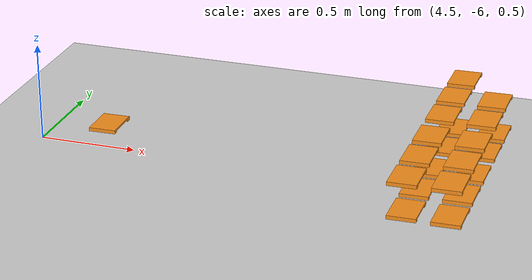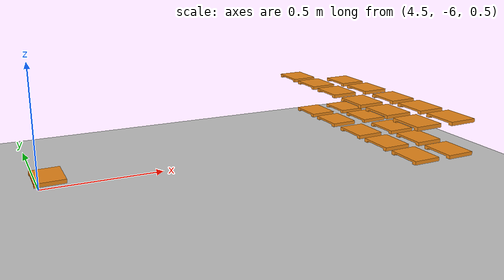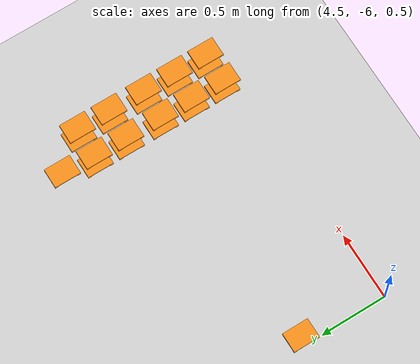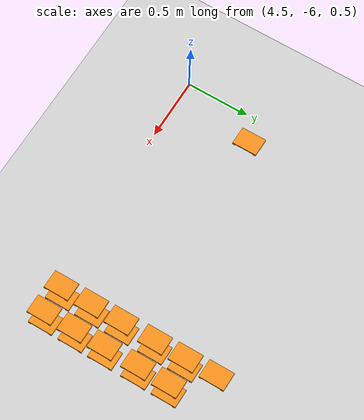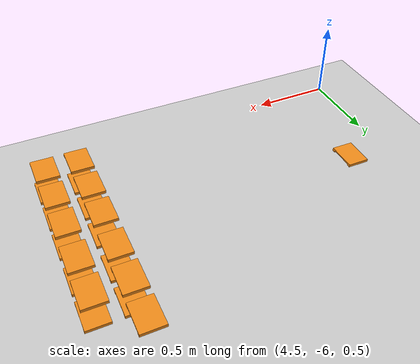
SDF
<sdf version="1.7">
 <world name="default">
  <model name="ground_plane">
   <static>1</static>
   <link name="link">
    <collision name="collision">
     <geometry><plane><normal>0 0 1</normal><size>100 100</size></plane></geometry>
     <surface>
      <contact><collide_bitmask>65535</collide_bitmask></contact>
      <friction><ode><mu>1</mu><mu2>1</mu2></ode></friction>
     </surface>
    </collision>
    <visual name="visual">
     <cast_shadows>0</cast_shadows>
     <geometry><plane><normal>0 0 1</normal><size>100 100</size></plane></geometry>
     <material>
      <script><uri>file://media/materials/scripts/gazebo.material</uri><name>Gazebo/Grey</name></script>
     </material>
    </visual>
   </link>
  </model>
  <model name="pallet_311">
   <pose>4.6059 -5.4125 0.331043 3.2e-05 -0.012376 1e-05</pose>
   <link name="link">
    <inertial>
     <pose>0 0 0 0 -0 1.571</pose>
     <inertia>
      <ixx>0.00220983</ixx>
      <ixy>0</ixy>
      <ixz>0</ixz>
      <iyy>0.00128087</iyy>
      <iyz>0</iyz>
      <izz>0.00244903</izz>
     </inertia>
     <mass>0.01</mass>
    </inertial>
    <visual name="visual1">
     <cast_shadows>0</cast_shadows>
     <geometry><mesh><uri>model://pallet/meshes/pallet.stl</uri></mesh></geometry>
     <material>
      <script><uri>file://media/materials/scripts/gazebo.material</uri><name>Gazebo/Orange</name></script>
      <shader type="pixel"><normal_map>__default__</normal_map></shader>
      <emissive>0 0 0 1</emissive>
     </material>
     <pose>0 0 -0 0 -0 1.571</pose>
    </visual>
    <collision name="collision_0">
     <pose>0 0 0 0 -0 1.571</pose>
     <geometry><mesh><uri>model://pallet/meshes/pallet.stl</uri></mesh></geometry>
     <surface>
      <friction>
       <ode><mu>1</mu><mu2>1</mu2><fdir1>0 0 0</fdir1><slip1>0</slip1><slip2>0</slip2></ode>
       <torsional>
        <coefficient>1</coefficient>
        <patch_radius>0</patch_radius>
        <surface_radius>0</surface_radius>
        <use_patch_radius>1</use_patch_radius>
        <ode><slip>0</slip></ode>
       </torsional>
      </friction>
      <bounce><restitution_coefficient>0</restitution_coefficient><threshold>1e+06</threshold></bounce>
      <contact>
       <collide_without_contact>0</collide_without_contact>
       <collide_without_contact_bitmask>1</collide_without_contact_bitmask>
       <collide_bitmask>1</collide_bitmask>
       <ode>
        <soft_cfm>0</soft_cfm>
        <soft_erp>0.2</soft_erp>
        <kp>1e+13</kp>
        <kd>1</kd>
        <max_vel>0.01</max_vel>
        <min_depth>0</min_depth>
       </ode>
       <bullet>
        <split_impulse>1</split_impulse>
        <split_impulse_penetration_threshold>-0.01</split_impulse_penetration_threshold>
        <soft_cfm>0</soft_cfm>
        <soft_erp>0.2</soft_erp>
        <kp>1e+13</kp>
        <kd>1</kd>
       </bullet>
      </contact>
     </surface>
    </collision>
   </link>
   <static>0</static>
  </model>
  <model name="pallet_319">
   <pose>6.60559 -4.887 0.330972 2.6e-05 -0.013267 -7e-06</pose>
   <link name="link">
    <inertial>
     <pose>0 0 0 0 -0 1.571</pose>
     <inertia>
      <ixx>0.00220983</ixx>
      <ixy>0</ixy>
      <ixz>0</ixz>
      <iyy>0.00128087</iyy>
      <iyz>0</iyz>
      <izz>0.00244903</izz>
     </inertia>
     <mass>0.01</mass>
    </inertial>
    <visual name="visual1">
     <cast_shadows>0</cast_shadows>
     <geometry><mesh><uri>model://pallet/meshes/pallet.stl</uri></mesh></geometry>
     <material>
      <script><uri>file://media/materials/scripts/gazebo.material</uri><name>Gazebo/Orange</name></script>
      <shader type="pixel"><normal_map>__default__</normal_map></shader>
      <emissive>0 0 0 1</emissive>
     </material>
     <pose>0 0 -0 0 -0 1.571</pose>
    </visual>
    <collision name="collision_0">
     <pose>0 0 0 0 -0 1.571</pose>
     <geometry><mesh><uri>model://pallet/meshes/pallet.stl</uri></mesh></geometry>
     <surface>
      <friction>
       <ode><mu>1</mu><mu2>1</mu2><fdir1>0 0 0</fdir1><slip1>0</slip1><slip2>0</slip2></ode>
       <torsional>
        <coefficient>1</coefficient>
        <patch_radius>0</patch_radius>
        <surface_radius>0</surface_radius>
        <use_patch_radius>1</use_patch_radius>
        <ode><slip>0</slip></ode>
       </torsional>
      </friction>
      <bounce><restitution_coefficient>0</restitution_coefficient><threshold>1e+06</threshold></bounce>
      <contact>
       <collide_without_contact>0</collide_without_contact>
       <collide_without_contact_bitmask>1</collide_without_contact_bitmask>
       <collide_bitmask>1</collide_bitmask>
       <ode>
        <soft_cfm>0</soft_cfm>
        <soft_erp>0.2</soft_erp>
        <kp>1e+13</kp>
        <kd>1</kd>
        <max_vel>0.01</max_vel>
        <min_depth>0</min_depth>
       </ode>
       <bullet>
        <split_impulse>1</split_impulse>
        <split_impulse_penetration_threshold>-0.01</split_impulse_penetration_threshold>
        <soft_cfm>0</soft_cfm>
        <soft_erp>0.2</soft_erp>
        <kp>1e+13</kp>
        <kd>1</kd>
       </bullet>
      </contact>
     </surface>
    </collision>
   </link>
   <static>0</static>
  </model>
  <model name="pallet_321">
   <pose>6.60559 -5.137 0.330972 1.8e-05 -0.013267 4e-06</pose>
   <link name="link">
    <inertial>
     <pose>0 0 0 0 -0 1.571</pose>
     <inertia>
      <ixx>0.00220983</ixx>
      <ixy>0</ixy>
      <ixz>0</ixz>
      <iyy>0.00128087</iyy>
      <iyz>0</iyz>
      <izz>0.00244903</izz>
     </inertia>
     <mass>0.01</mass>
    </inertial>
    <visual name="visual1">
     <cast_shadows>0</cast_shadows>
     <geometry><mesh><uri>model://pallet/meshes/pallet.stl</uri></mesh></geometry>
     <material>
      <script><uri>file://media/materials/scripts/gazebo.material</uri><name>Gazebo/Orange</name></script>
      <shader type="pixel"><normal_map>__default__</normal_map></shader>
      <emissive>0 0 0 1</emissive>
     </material>
     <pose>0 0 -0 0 -0 1.571</pose>
    </visual>
    <collision name="collision_0">
     <pose>0 0 0 0 -0 1.571</pose>
     <geometry><mesh><uri>model://pallet/meshes/pallet.stl</uri></mesh></geometry>
     <surface>
      <friction>
       <ode><mu>1</mu><mu2>1</mu2><fdir1>0 0 0</fdir1><slip1>0</slip1><slip2>0</slip2></ode>
       <torsional>
        <coefficient>1</coefficient>
        <patch_radius>0</patch_radius>
        <surface_radius>0</surface_radius>
        <use_patch_radius>1</use_patch_radius>
        <ode><slip>0</slip></ode>
       </torsional>
      </friction>
      <bounce><restitution_coefficient>0</restitution_coefficient><threshold>1e+06</threshold></bounce>
      <contact>
       <collide_without_contact>0</collide_without_contact>
       <collide_without_contact_bitmask>1</collide_without_contact_bitmask>
       <collide_bitmask>1</collide_bitmask>
       <ode>
        <soft_cfm>0</soft_cfm>
        <soft_erp>0.2</soft_erp>
        <kp>1e+13</kp>
        <kd>1</kd>
        <max_vel>0.01</max_vel>
        <min_depth>0</min_depth>
       </ode>
       <bullet>
        <split_impulse>1</split_impulse>
        <split_impulse_penetration_threshold>-0.01</split_impulse_penetration_threshold>
        <soft_cfm>0</soft_cfm>
        <soft_erp>0.2</soft_erp>
        <kp>1e+13</kp>
        <kd>1</kd>
       </bullet>
      </contact>
     </surface>
    </collision>
   </link>
   <static>0</static>
  </model>
  <model name="pallet_322">
   <pose>6.6056 -5.6625 0.330971 2.3e-05 -0.013266 -8e-06</pose>
   <link name="link">
    <inertial>
     <pose>0 0 0 0 -0 1.571</pose>
     <inertia>
      <ixx>0.00220983</ixx>
      <ixy>0</ixy>
      <ixz>0</ixz>
      <iyy>0.00128087</iyy>
      <iyz>0</iyz>
      <izz>0.00244903</izz>
     </inertia>
     <mass>0.01</mass>
    </inertial>
    <visual name="visual1">
     <cast_shadows>0</cast_shadows>
     <geometry><mesh><uri>model://pallet/meshes/pallet.stl</uri></mesh></geometry>
     <material>
      <script><uri>file://media/materials/scripts/gazebo.material</uri><name>Gazebo/Orange</name></script>
      <shader type="pixel"><normal_map>__default__</normal_map></shader>
      <emissive>0 0 0 1</emissive>
     </material>
     <pose>0 0 -0 0 -0 1.571</pose>
    </visual>
    <collision name="collision_0">
     <pose>0 0 0 0 -0 1.571</pose>
     <geometry><mesh><uri>model://pallet/meshes/pallet.stl</uri></mesh></geometry>
     <surface>
      <friction>
       <ode><mu>1</mu><mu2>1</mu2><fdir1>0 0 0</fdir1><slip1>0</slip1><slip2>0</slip2></ode>
       <torsional>
        <coefficient>1</coefficient>
        <patch_radius>0</patch_radius>
        <surface_radius>0</surface_radius>
        <use_patch_radius>1</use_patch_radius>
        <ode><slip>0</slip></ode>
       </torsional>
      </friction>
      <bounce><restitution_coefficient>0</restitution_coefficient><threshold>1e+06</threshold></bounce>
      <contact>
       <collide_without_contact>0</collide_without_contact>
       <collide_without_contact_bitmask>1</collide_without_contact_bitmask>
       <collide_bitmask>1</collide_bitmask>
       <ode>
        <soft_cfm>0</soft_cfm>
        <soft_erp>0.2</soft_erp>
        <kp>1e+13</kp>
        <kd>1</kd>
        <max_vel>0.01</max_vel>
        <min_depth>0</min_depth>
       </ode>
       <bullet>
        <split_impulse>1</split_impulse>
        <split_impulse_penetration_threshold>-0.01</split_impulse_penetration_threshold>
        <soft_cfm>0</soft_cfm>
        <soft_erp>0.2</soft_erp>
        <kp>1e+13</kp>
        <kd>1</kd>
       </bullet>
      </contact>
     </surface>
    </collision>
   </link>
   <static>0</static>
  </model>
  <model name="pallet_323">
   <pose>6.6056 -5.4125 0.330973 1.1e-05 -0.013267 3e-06</pose>
   <link name="link">
    <inertial>
     <pose>0 0 0 0 -0 1.571</pose>
     <inertia>
      <ixx>0.00220983</ixx>
      <ixy>0</ixy>
      <ixz>0</ixz>
      <iyy>0.00128087</iyy>
      <iyz>0</iyz>
      <izz>0.00244903</izz>
     </inertia>
     <mass>0.01</mass>
    </inertial>
    <visual name="visual1">
     <cast_shadows>0</cast_shadows>
     <geometry><mesh><uri>model://pallet/meshes/pallet.stl</uri></mesh></geometry>
     <material>
      <script><uri>file://media/materials/scripts/gazebo.material</uri><name>Gazebo/Orange</name></script>
      <shader type="pixel"><normal_map>__default__</normal_map></shader>
      <emissive>0 0 0 1</emissive>
     </material>
     <pose>0 0 -0 0 -0 1.571</pose>
    </visual>
    <collision name="collision_0">
     <pose>0 0 0 0 -0 1.571</pose>
     <geometry><mesh><uri>model://pallet/meshes/pallet.stl</uri></mesh></geometry>
     <surface>
      <friction>
       <ode><mu>1</mu><mu2>1</mu2><fdir1>0 0 0</fdir1><slip1>0</slip1><slip2>0</slip2></ode>
       <torsional>
        <coefficient>1</coefficient>
        <patch_radius>0</patch_radius>
        <surface_radius>0</surface_radius>
        <use_patch_radius>1</use_patch_radius>
        <ode><slip>0</slip></ode>
       </torsional>
      </friction>
      <bounce><restitution_coefficient>0</restitution_coefficient><threshold>1e+06</threshold></bounce>
      <contact>
       <collide_without_contact>0</collide_without_contact>
       <collide_without_contact_bitmask>1</collide_without_contact_bitmask>
       <collide_bitmask>1</collide_bitmask>
       <ode>
        <soft_cfm>0</soft_cfm>
        <soft_erp>0.2</soft_erp>
        <kp>1e+13</kp>
        <kd>1</kd>
        <max_vel>0.01</max_vel>
        <min_depth>0</min_depth>
       </ode>
       <bullet>
        <split_impulse>1</split_impulse>
        <split_impulse_penetration_threshold>-0.01</split_impulse_penetration_threshold>
        <soft_cfm>0</soft_cfm>
        <soft_erp>0.2</soft_erp>
        <kp>1e+13</kp>
        <kd>1</kd>
       </bullet>
      </contact>
     </surface>
    </collision>
   </link>
   <static>0</static>
  </model>
  <model name="pallet_324">
   <pose>6.6056 -5.9125 0.330971 8e-06 -0.013267 5e-06</pose>
   <link name="link">
    <inertial>
     <pose>0 0 0 0 -0 1.571</pose>
     <inertia>
      <ixx>0.00220983</ixx>
      <ixy>0</ixy>
      <ixz>0</ixz>
      <iyy>0.00128087</iyy>
      <iyz>0</iyz>
      <izz>0.00244903</izz>
     </inertia>
     <mass>0.01</mass>
    </inertial>
    <visual name="visual1">
     <cast_shadows>0</cast_shadows>
     <geometry><mesh><uri>model://pallet/meshes/pallet.stl</uri></mesh></geometry>
     <material>
      <script><uri>file://media/materials/scripts/gazebo.material</uri><name>Gazebo/Orange</name></script>
      <shader type="pixel"><normal_map>__default__</normal_map></shader>
      <emissive>0 0 0 1</emissive>
     </material>
     <pose>0 0 -0 0 -0 1.571</pose>
    </visual>
    <collision name="collision_0">
     <pose>0 0 0 0 -0 1.571</pose>
     <geometry><mesh><uri>model://pallet/meshes/pallet.stl</uri></mesh></geometry>
     <surface>
      <friction>
       <ode><mu>1</mu><mu2>1</mu2><fdir1>0 0 0</fdir1><slip1>0</slip1><slip2>0</slip2></ode>
       <torsional>
        <coefficient>1</coefficient>
        <patch_radius>0</patch_radius>
        <surface_radius>0</surface_radius>
        <use_patch_radius>1</use_patch_radius>
        <ode><slip>0</slip></ode>
       </torsional>
      </friction>
      <bounce><restitution_coefficient>0</restitution_coefficient><threshold>1e+06</threshold></bounce>
      <contact>
       <collide_without_contact>0</collide_without_contact>
       <collide_without_contact_bitmask>1</collide_without_contact_bitmask>
       <collide_bitmask>1</collide_bitmask>
       <ode>
        <soft_cfm>0</soft_cfm>
        <soft_erp>0.2</soft_erp>
        <kp>1e+13</kp>
        <kd>1</kd>
        <max_vel>0.01</max_vel>
        <min_depth>0</min_depth>
       </ode>
       <bullet>
        <split_impulse>1</split_impulse>
        <split_impulse_penetration_threshold>-0.01</split_impulse_penetration_threshold>
        <soft_cfm>0</soft_cfm>
        <soft_erp>0.2</soft_erp>
        <kp>1e+13</kp>
        <kd>1</kd>
       </bullet>
      </contact>
     </surface>
    </collision>
   </link>
   <static>0</static>
  </model>
  <model name="pallet_331">
   <pose>6.38563 -4.887 0.330984 2.1e-05 -0.013162 -6e-06</pose>
   <link name="link">
    <inertial>
     <pose>0 0 0 0 -0 1.571</pose>
     <inertia>
      <ixx>0.00220983</ixx>
      <ixy>0</ixy>
      <ixz>0</ixz>
      <iyy>0.00128087</iyy>
      <iyz>0</iyz>
      <izz>0.00244903</izz>
     </inertia>
     <mass>0.01</mass>
    </inertial>
    <visual name="visual1">
     <cast_shadows>0</cast_shadows>
     <geometry><mesh><uri>model://pallet/meshes/pallet.stl</uri></mesh></geometry>
     <material>
      <script><uri>file://media/materials/scripts/gazebo.material</uri><name>Gazebo/Orange</name></script>
      <shader type="pixel"><normal_map>__default__</normal_map></shader>
      <emissive>0 0 0 1</emissive>
     </material>
     <pose>0 0 -0 0 -0 1.571</pose>
    </visual>
    <collision name="collision_0">
     <pose>0 0 0 0 -0 1.571</pose>
     <geometry><mesh><uri>model://pallet/meshes/pallet.stl</uri></mesh></geometry>
     <surface>
      <friction>
       <ode><mu>1</mu><mu2>1</mu2><fdir1>0 0 0</fdir1><slip1>0</slip1><slip2>0</slip2></ode>
       <torsional>
        <coefficient>1</coefficient>
        <patch_radius>0</patch_radius>
        <surface_radius>0</surface_radius>
        <use_patch_radius>1</use_patch_radius>
        <ode><slip>0</slip></ode>
       </torsional>
      </friction>
      <bounce><restitution_coefficient>0</restitution_coefficient><threshold>1e+06</threshold></bounce>
      <contact>
       <collide_without_contact>0</collide_without_contact>
       <collide_without_contact_bitmask>1</collide_without_contact_bitmask>
       <collide_bitmask>1</collide_bitmask>
       <ode>
        <soft_cfm>0</soft_cfm>
        <soft_erp>0.2</soft_erp>
        <kp>1e+13</kp>
        <kd>1</kd>
        <max_vel>0.01</max_vel>
        <min_depth>0</min_depth>
       </ode>
       <bullet>
        <split_impulse>1</split_impulse>
        <split_impulse_penetration_threshold>-0.01</split_impulse_penetration_threshold>
        <soft_cfm>0</soft_cfm>
        <soft_erp>0.2</soft_erp>
        <kp>1e+13</kp>
        <kd>1</kd>
       </bullet>
      </contact>
     </surface>
    </collision>
   </link>
   <static>0</static>
  </model>
  <model name="pallet_333">
   <pose>6.38563 -5.137 0.330982 3.4e-05 -0.013161 4e-06</pose>
   <link name="link">
    <inertial>
     <pose>0 0 0 0 -0 1.571</pose>
     <inertia>
      <ixx>0.00220983</ixx>
      <ixy>0</ixy>
      <ixz>0</ixz>
      <iyy>0.00128087</iyy>
      <iyz>0</iyz>
      <izz>0.00244903</izz>
     </inertia>
     <mass>0.01</mass>
    </inertial>
    <visual name="visual1">
     <cast_shadows>0</cast_shadows>
     <geometry><mesh><uri>model://pallet/meshes/pallet.stl</uri></mesh></geometry>
     <material>
      <script><uri>file://media/materials/scripts/gazebo.material</uri><name>Gazebo/Orange</name></script>
      <shader type="pixel"><normal_map>__default__</normal_map></shader>
      <emissive>0 0 0 1</emissive>
     </material>
     <pose>0 0 -0 0 -0 1.571</pose>
    </visual>
    <collision name="collision_0">
     <pose>0 0 0 0 -0 1.571</pose>
     <geometry><mesh><uri>model://pallet/meshes/pallet.stl</uri></mesh></geometry>
     <surface>
      <friction>
       <ode><mu>1</mu><mu2>1</mu2><fdir1>0 0 0</fdir1><slip1>0</slip1><slip2>0</slip2></ode>
       <torsional>
        <coefficient>1</coefficient>
        <patch_radius>0</patch_radius>
        <surface_radius>0</surface_radius>
        <use_patch_radius>1</use_patch_radius>
        <ode><slip>0</slip></ode>
       </torsional>
      </friction>
      <bounce><restitution_coefficient>0</restitution_coefficient><threshold>1e+06</threshold></bounce>
      <contact>
       <collide_without_contact>0</collide_without_contact>
       <collide_without_contact_bitmask>1</collide_without_contact_bitmask>
       <collide_bitmask>1</collide_bitmask>
       <ode>
        <soft_cfm>0</soft_cfm>
        <soft_erp>0.2</soft_erp>
        <kp>1e+13</kp>
        <kd>1</kd>
        <max_vel>0.01</max_vel>
        <min_depth>0</min_depth>
       </ode>
       <bullet>
        <split_impulse>1</split_impulse>
        <split_impulse_penetration_threshold>-0.01</split_impulse_penetration_threshold>
        <soft_cfm>0</soft_cfm>
        <soft_erp>0.2</soft_erp>
        <kp>1e+13</kp>
        <kd>1</kd>
       </bullet>
      </contact>
     </surface>
    </collision>
   </link>
   <static>0</static>
  </model>
  <model name="pallet_334">
   <pose>6.38563 -5.6625 0.330982 2.3e-05 -0.013163 -7e-06</pose>
   <link name="link">
    <inertial>
     <pose>0 0 0 0 -0 1.571</pose>
     <inertia>
      <ixx>0.00220983</ixx>
      <ixy>0</ixy>
      <ixz>0</ixz>
      <iyy>0.00128087</iyy>
      <iyz>0</iyz>
      <izz>0.00244903</izz>
     </inertia>
     <mass>0.01</mass>
    </inertial>
    <visual name="visual1">
     <cast_shadows>0</cast_shadows>
     <geometry><mesh><uri>model://pallet/meshes/pallet.stl</uri></mesh></geometry>
     <material>
      <script><uri>file://media/materials/scripts/gazebo.material</uri><name>Gazebo/Orange</name></script>
      <shader type="pixel"><normal_map>__default__</normal_map></shader>
      <emissive>0 0 0 1</emissive>
     </material>
     <pose>0 0 -0 0 -0 1.571</pose>
    </visual>
    <collision name="collision_0">
     <pose>0 0 0 0 -0 1.571</pose>
     <geometry><mesh><uri>model://pallet/meshes/pallet.stl</uri></mesh></geometry>
     <surface>
      <friction>
       <ode><mu>1</mu><mu2>1</mu2><fdir1>0 0 0</fdir1><slip1>0</slip1><slip2>0</slip2></ode>
       <torsional>
        <coefficient>1</coefficient>
        <patch_radius>0</patch_radius>
        <surface_radius>0</surface_radius>
        <use_patch_radius>1</use_patch_radius>
        <ode><slip>0</slip></ode>
       </torsional>
      </friction>
      <bounce><restitution_coefficient>0</restitution_coefficient><threshold>1e+06</threshold></bounce>
      <contact>
       <collide_without_contact>0</collide_without_contact>
       <collide_without_contact_bitmask>1</collide_without_contact_bitmask>
       <collide_bitmask>1</collide_bitmask>
       <ode>
        <soft_cfm>0</soft_cfm>
        <soft_erp>0.2</soft_erp>
        <kp>1e+13</kp>
        <kd>1</kd>
        <max_vel>0.01</max_vel>
        <min_depth>0</min_depth>
       </ode>
       <bullet>
        <split_impulse>1</split_impulse>
        <split_impulse_penetration_threshold>-0.01</split_impulse_penetration_threshold>
        <soft_cfm>0</soft_cfm>
        <soft_erp>0.2</soft_erp>
        <kp>1e+13</kp>
        <kd>1</kd>
       </bullet>
      </contact>
     </surface>
    </collision>
   </link>
   <static>0</static>
  </model>
  <model name="pallet_335">
   <pose>6.38563 -5.4125 0.330984 9e-06 -0.013162 3e-06</pose>
   <link name="link">
    <inertial>
     <pose>0 0 0 0 -0 1.571</pose>
     <inertia>
      <ixx>0.00220983</ixx>
      <ixy>0</ixy>
      <ixz>0</ixz>
      <iyy>0.00128087</iyy>
      <iyz>0</iyz>
      <izz>0.00244903</izz>
     </inertia>
     <mass>0.01</mass>
    </inertial>
    <visual name="visual1">
     <cast_shadows>0</cast_shadows>
     <geometry><mesh><uri>model://pallet/meshes/pallet.stl</uri></mesh></geometry>
     <material>
      <script><uri>file://media/materials/scripts/gazebo.material</uri><name>Gazebo/Orange</name></script>
      <shader type="pixel"><normal_map>__default__</normal_map></shader>
      <emissive>0 0 0 1</emissive>
     </material>
     <pose>0 0 -0 0 -0 1.571</pose>
    </visual>
    <collision name="collision_0">
     <pose>0 0 0 0 -0 1.571</pose>
     <geometry><mesh><uri>model://pallet/meshes/pallet.stl</uri></mesh></geometry>
     <surface>
      <friction>
       <ode><mu>1</mu><mu2>1</mu2><fdir1>0 0 0</fdir1><slip1>0</slip1><slip2>0</slip2></ode>
       <torsional>
        <coefficient>1</coefficient>
        <patch_radius>0</patch_radius>
        <surface_radius>0</surface_radius>
        <use_patch_radius>1</use_patch_radius>
        <ode><slip>0</slip></ode>
       </torsional>
      </friction>
      <bounce><restitution_coefficient>0</restitution_coefficient><threshold>1e+06</threshold></bounce>
      <contact>
       <collide_without_contact>0</collide_without_contact>
       <collide_without_contact_bitmask>1</collide_without_contact_bitmask>
       <collide_bitmask>1</collide_bitmask>
       <ode>
        <soft_cfm>0</soft_cfm>
        <soft_erp>0.2</soft_erp>
        <kp>1e+13</kp>
        <kd>1</kd>
        <max_vel>0.01</max_vel>
        <min_depth>0</min_depth>
       </ode>
       <bullet>
        <split_impulse>1</split_impulse>
        <split_impulse_penetration_threshold>-0.01</split_impulse_penetration_threshold>
        <soft_cfm>0</soft_cfm>
        <soft_erp>0.2</soft_erp>
        <kp>1e+13</kp>
        <kd>1</kd>
       </bullet>
      </contact>
     </surface>
    </collision>
   </link>
   <static>0</static>
  </model>
  <model name="pallet_336">
   <pose>6.38564 -5.9125 0.330981 2.7e-05 -0.013162 6e-06</pose>
   <link name="link">
    <inertial>
     <pose>0 0 0 0 -0 1.571</pose>
     <inertia>
      <ixx>0.00220983</ixx>
      <ixy>0</ixy>
      <ixz>0</ixz>
      <iyy>0.00128087</iyy>
      <iyz>0</iyz>
      <izz>0.00244903</izz>
     </inertia>
     <mass>0.01</mass>
    </inertial>
    <visual name="visual1">
     <cast_shadows>0</cast_shadows>
     <geometry><mesh><uri>model://pallet/meshes/pallet.stl</uri></mesh></geometry>
     <material>
      <script><uri>file://media/materials/scripts/gazebo.material</uri><name>Gazebo/Orange</name></script>
      <shader type="pixel"><normal_map>__default__</normal_map></shader>
      <emissive>0 0 0 1</emissive>
     </material>
     <pose>0 0 -0 0 -0 1.571</pose>
    </visual>
    <collision name="collision_0">
     <pose>0 0 0 0 -0 1.571</pose>
     <geometry><mesh><uri>model://pallet/meshes/pallet.stl</uri></mesh></geometry>
     <surface>
      <friction>
       <ode><mu>1</mu><mu2>1</mu2><fdir1>0 0 0</fdir1><slip1>0</slip1><slip2>0</slip2></ode>
       <torsional>
        <coefficient>1</coefficient>
        <patch_radius>0</patch_radius>
        <surface_radius>0</surface_radius>
        <use_patch_radius>1</use_patch_radius>
        <ode><slip>0</slip></ode>
       </torsional>
      </friction>
      <bounce><restitution_coefficient>0</restitution_coefficient><threshold>1e+06</threshold></bounce>
      <contact>
       <collide_without_contact>0</collide_without_contact>
       <collide_without_contact_bitmask>1</collide_without_contact_bitmask>
       <collide_bitmask>1</collide_bitmask>
       <ode>
        <soft_cfm>0</soft_cfm>
        <soft_erp>0.2</soft_erp>
        <kp>1e+13</kp>
        <kd>1</kd>
        <max_vel>0.01</max_vel>
        <min_depth>0</min_depth>
       </ode>
       <bullet>
        <split_impulse>1</split_impulse>
        <split_impulse_penetration_threshold>-0.01</split_impulse_penetration_threshold>
        <soft_cfm>0</soft_cfm>
        <soft_erp>0.2</soft_erp>
        <kp>1e+13</kp>
        <kd>1</kd>
       </bullet>
      </contact>
     </surface>
    </collision>
   </link>
   <static>0</static>
  </model>
  <model name="pallet_343">
   <pose>6.38326 -4.887 0.510967 3.3e-05 -0.013162 -1.4e-05</pose>
   <link name="link">
    <inertial>
     <pose>0 0 0 0 -0 1.571</pose>
     <inertia>
      <ixx>0.00220983</ixx>
      <ixy>0</ixy>
      <ixz>0</ixz>
      <iyy>0.00128087</iyy>
      <iyz>0</iyz>
      <izz>0.00244903</izz>
     </inertia>
     <mass>0.01</mass>
    </inertial>
    <visual name="visual1">
     <cast_shadows>0</cast_shadows>
     <geometry><mesh><uri>model://pallet/meshes/pallet.stl</uri></mesh></geometry>
     <material>
      <script><uri>file://media/materials/scripts/gazebo.material</uri><name>Gazebo/Orange</name></script>
      <shader type="pixel"><normal_map>__default__</normal_map></shader>
      <emissive>0 0 0 1</emissive>
     </material>
     <pose>0 0 -0 0 -0 1.571</pose>
    </visual>
    <collision name="collision_0">
     <pose>0 0 0 0 -0 1.571</pose>
     <geometry><mesh><uri>model://pallet/meshes/pallet.stl</uri></mesh></geometry>
     <surface>
      <friction>
       <ode><mu>1</mu><mu2>1</mu2><fdir1>0 0 0</fdir1><slip1>0</slip1><slip2>0</slip2></ode>
       <torsional>
        <coefficient>1</coefficient>
        <patch_radius>0</patch_radius>
        <surface_radius>0</surface_radius>
        <use_patch_radius>1</use_patch_radius>
        <ode><slip>0</slip></ode>
       </torsional>
      </friction>
      <bounce><restitution_coefficient>0</restitution_coefficient><threshold>1e+06</threshold></bounce>
      <contact>
       <collide_without_contact>0</collide_without_contact>
       <collide_without_contact_bitmask>1</collide_without_contact_bitmask>
       <collide_bitmask>1</collide_bitmask>
       <ode>
        <soft_cfm>0</soft_cfm>
        <soft_erp>0.2</soft_erp>
        <kp>1e+13</kp>
        <kd>1</kd>
        <max_vel>0.01</max_vel>
        <min_depth>0</min_depth>
       </ode>
       <bullet>
        <split_impulse>1</split_impulse>
        <split_impulse_penetration_threshold>-0.01</split_impulse_penetration_threshold>
        <soft_cfm>0</soft_cfm>
        <soft_erp>0.2</soft_erp>
        <kp>1e+13</kp>
        <kd>1</kd>
       </bullet>
      </contact>
     </surface>
    </collision>
   </link>
   <static>0</static>
  </model>
  <model name="pallet_344">
   <pose>6.38326 -4.637 0.510969 1.3e-05 -0.013161 6e-06</pose>
   <link name="link">
    <inertial>
     <pose>0 0 0 0 -0 1.571</pose>
     <inertia>
      <ixx>0.00220983</ixx>
      <ixy>0</ixy>
      <ixz>0</ixz>
      <iyy>0.00128087</iyy>
      <iyz>0</iyz>
      <izz>0.00244903</izz>
     </inertia>
     <mass>0.01</mass>
    </inertial>
    <visual name="visual1">
     <cast_shadows>0</cast_shadows>
     <geometry><mesh><uri>model://pallet/meshes/pallet.stl</uri></mesh></geometry>
     <material>
      <script><uri>file://media/materials/scripts/gazebo.material</uri><name>Gazebo/Orange</name></script>
      <shader type="pixel"><normal_map>__default__</normal_map></shader>
      <emissive>0 0 0 1</emissive>
     </material>
     <pose>0 0 -0 0 -0 1.571</pose>
    </visual>
    <collision name="collision_0">
     <pose>0 0 0 0 -0 1.571</pose>
     <geometry><mesh><uri>model://pallet/meshes/pallet.stl</uri></mesh></geometry>
     <surface>
      <friction>
       <ode><mu>1</mu><mu2>1</mu2><fdir1>0 0 0</fdir1><slip1>0</slip1><slip2>0</slip2></ode>
       <torsional>
        <coefficient>1</coefficient>
        <patch_radius>0</patch_radius>
        <surface_radius>0</surface_radius>
        <use_patch_radius>1</use_patch_radius>
        <ode><slip>0</slip></ode>
       </torsional>
      </friction>
      <bounce><restitution_coefficient>0</restitution_coefficient><threshold>1e+06</threshold></bounce>
      <contact>
       <collide_without_contact>0</collide_without_contact>
       <collide_without_contact_bitmask>1</collide_without_contact_bitmask>
       <collide_bitmask>1</collide_bitmask>
       <ode>
        <soft_cfm>0</soft_cfm>
        <soft_erp>0.2</soft_erp>
        <kp>1e+13</kp>
        <kd>1</kd>
        <max_vel>0.01</max_vel>
        <min_depth>0</min_depth>
       </ode>
       <bullet>
        <split_impulse>1</split_impulse>
        <split_impulse_penetration_threshold>-0.01</split_impulse_penetration_threshold>
        <soft_cfm>0</soft_cfm>
        <soft_erp>0.2</soft_erp>
        <kp>1e+13</kp>
        <kd>1</kd>
       </bullet>
      </contact>
     </surface>
    </collision>
   </link>
   <static>0</static>
  </model>
  <model name="pallet_345">
   <pose>6.38326 -5.137 0.510967 2.9e-05 -0.013164 -4e-06</pose>
   <link name="link">
    <inertial>
     <pose>0 0 0 0 -0 1.571</pose>
     <inertia>
      <ixx>0.00220983</ixx>
      <ixy>0</ixy>
      <ixz>0</ixz>
      <iyy>0.00128087</iyy>
      <iyz>0</iyz>
      <izz>0.00244903</izz>
     </inertia>
     <mass>0.01</mass>
    </inertial>
    <visual name="visual1">
     <cast_shadows>0</cast_shadows>
     <geometry><mesh><uri>model://pallet/meshes/pallet.stl</uri></mesh></geometry>
     <material>
      <script><uri>file://media/materials/scripts/gazebo.material</uri><name>Gazebo/Orange</name></script>
      <shader type="pixel"><normal_map>__default__</normal_map></shader>
      <emissive>0 0 0 1</emissive>
     </material>
     <pose>0 0 -0 0 -0 1.571</pose>
    </visual>
    <collision name="collision_0">
     <pose>0 0 0 0 -0 1.571</pose>
     <geometry><mesh><uri>model://pallet/meshes/pallet.stl</uri></mesh></geometry>
     <surface>
      <friction>
       <ode><mu>1</mu><mu2>1</mu2><fdir1>0 0 0</fdir1><slip1>0</slip1><slip2>0</slip2></ode>
       <torsional>
        <coefficient>1</coefficient>
        <patch_radius>0</patch_radius>
        <surface_radius>0</surface_radius>
        <use_patch_radius>1</use_patch_radius>
        <ode><slip>0</slip></ode>
       </torsional>
      </friction>
      <bounce><restitution_coefficient>0</restitution_coefficient><threshold>1e+06</threshold></bounce>
      <contact>
       <collide_without_contact>0</collide_without_contact>
       <collide_without_contact_bitmask>1</collide_without_contact_bitmask>
       <collide_bitmask>1</collide_bitmask>
       <ode>
        <soft_cfm>0</soft_cfm>
        <soft_erp>0.2</soft_erp>
        <kp>1e+13</kp>
        <kd>1</kd>
        <max_vel>0.01</max_vel>
        <min_depth>0</min_depth>
       </ode>
       <bullet>
        <split_impulse>1</split_impulse>
        <split_impulse_penetration_threshold>-0.01</split_impulse_penetration_threshold>
        <soft_cfm>0</soft_cfm>
        <soft_erp>0.2</soft_erp>
        <kp>1e+13</kp>
        <kd>1</kd>
       </bullet>
      </contact>
     </surface>
    </collision>
   </link>
   <static>0</static>
  </model>
  <model name="pallet_346">
   <pose>6.38326 -5.6625 0.510966 3.3e-05 -0.013163 -1.5e-05</pose>
   <link name="link">
    <inertial>
     <pose>0 0 0 0 -0 1.571</pose>
     <inertia>
      <ixx>0.00220983</ixx>
      <ixy>0</ixy>
      <ixz>0</ixz>
      <iyy>0.00128087</iyy>
      <iyz>0</iyz>
      <izz>0.00244903</izz>
     </inertia>
     <mass>0.01</mass>
    </inertial>
    <visual name="visual1">
     <cast_shadows>0</cast_shadows>
     <geometry><mesh><uri>model://pallet/meshes/pallet.stl</uri></mesh></geometry>
     <material>
      <script><uri>file://media/materials/scripts/gazebo.material</uri><name>Gazebo/Orange</name></script>
      <shader type="pixel"><normal_map>__default__</normal_map></shader>
      <emissive>0 0 0 1</emissive>
     </material>
     <pose>0 0 -0 0 -0 1.571</pose>
    </visual>
    <collision name="collision_0">
     <pose>0 0 0 0 -0 1.571</pose>
     <geometry><mesh><uri>model://pallet/meshes/pallet.stl</uri></mesh></geometry>
     <surface>
      <friction>
       <ode><mu>1</mu><mu2>1</mu2><fdir1>0 0 0</fdir1><slip1>0</slip1><slip2>0</slip2></ode>
       <torsional>
        <coefficient>1</coefficient>
        <patch_radius>0</patch_radius>
        <surface_radius>0</surface_radius>
        <use_patch_radius>1</use_patch_radius>
        <ode><slip>0</slip></ode>
       </torsional>
      </friction>
      <bounce><restitution_coefficient>0</restitution_coefficient><threshold>1e+06</threshold></bounce>
      <contact>
       <collide_without_contact>0</collide_without_contact>
       <collide_without_contact_bitmask>1</collide_without_contact_bitmask>
       <collide_bitmask>1</collide_bitmask>
       <ode>
        <soft_cfm>0</soft_cfm>
        <soft_erp>0.2</soft_erp>
        <kp>1e+13</kp>
        <kd>1</kd>
        <max_vel>0.01</max_vel>
        <min_depth>0</min_depth>
       </ode>
       <bullet>
        <split_impulse>1</split_impulse>
        <split_impulse_penetration_threshold>-0.01</split_impulse_penetration_threshold>
        <soft_cfm>0</soft_cfm>
        <soft_erp>0.2</soft_erp>
        <kp>1e+13</kp>
        <kd>1</kd>
       </bullet>
      </contact>
     </surface>
    </collision>
   </link>
   <static>0</static>
  </model>
  <model name="pallet_347">
   <pose>6.38326 -5.4125 0.510967 1.4e-05 -0.013161 7e-06</pose>
   <link name="link">
    <inertial>
     <pose>0 0 0 0 -0 1.571</pose>
     <inertia>
      <ixx>0.00220983</ixx>
      <ixy>0</ixy>
      <ixz>0</ixz>
      <iyy>0.00128087</iyy>
      <iyz>0</iyz>
      <izz>0.00244903</izz>
     </inertia>
     <mass>0.01</mass>
    </inertial>
    <visual name="visual1">
     <cast_shadows>0</cast_shadows>
     <geometry><mesh><uri>model://pallet/meshes/pallet.stl</uri></mesh></geometry>
     <material>
      <script><uri>file://media/materials/scripts/gazebo.material</uri><name>Gazebo/Orange</name></script>
      <shader type="pixel"><normal_map>__default__</normal_map></shader>
      <emissive>0 0 0 1</emissive>
     </material>
     <pose>0 0 -0 0 -0 1.571</pose>
    </visual>
    <collision name="collision_0">
     <pose>0 0 0 0 -0 1.571</pose>
     <geometry><mesh><uri>model://pallet/meshes/pallet.stl</uri></mesh></geometry>
     <surface>
      <friction>
       <ode><mu>1</mu><mu2>1</mu2><fdir1>0 0 0</fdir1><slip1>0</slip1><slip2>0</slip2></ode>
       <torsional>
        <coefficient>1</coefficient>
        <patch_radius>0</patch_radius>
        <surface_radius>0</surface_radius>
        <use_patch_radius>1</use_patch_radius>
        <ode><slip>0</slip></ode>
       </torsional>
      </friction>
      <bounce><restitution_coefficient>0</restitution_coefficient><threshold>1e+06</threshold></bounce>
      <contact>
       <collide_without_contact>0</collide_without_contact>
       <collide_without_contact_bitmask>1</collide_without_contact_bitmask>
       <collide_bitmask>1</collide_bitmask>
       <ode>
        <soft_cfm>0</soft_cfm>
        <soft_erp>0.2</soft_erp>
        <kp>1e+13</kp>
        <kd>1</kd>
        <max_vel>0.01</max_vel>
        <min_depth>0</min_depth>
       </ode>
       <bullet>
        <split_impulse>1</split_impulse>
        <split_impulse_penetration_threshold>-0.01</split_impulse_penetration_threshold>
        <soft_cfm>0</soft_cfm>
        <soft_erp>0.2</soft_erp>
        <kp>1e+13</kp>
        <kd>1</kd>
       </bullet>
      </contact>
     </surface>
    </collision>
   </link>
   <static>0</static>
  </model>
  <model name="pallet_348">
   <pose>6.38327 -5.9125 0.510968 3e-06 -0.013166 1.6e-05</pose>
   <link name="link">
    <inertial>
     <pose>0 0 0 0 -0 1.571</pose>
     <inertia>
      <ixx>0.00220983</ixx>
      <ixy>0</ixy>
      <ixz>0</ixz>
      <iyy>0.00128087</iyy>
      <iyz>0</iyz>
      <izz>0.00244903</izz>
     </inertia>
     <mass>0.01</mass>
    </inertial>
    <visual name="visual1">
     <cast_shadows>0</cast_shadows>
     <geometry><mesh><uri>model://pallet/meshes/pallet.stl</uri></mesh></geometry>
     <material>
      <script><uri>file://media/materials/scripts/gazebo.material</uri><name>Gazebo/Orange</name></script>
      <shader type="pixel"><normal_map>__default__</normal_map></shader>
      <emissive>0 0 0 1</emissive>
     </material>
     <pose>0 0 -0 0 -0 1.571</pose>
    </visual>
    <collision name="collision_0">
     <pose>0 0 0 0 -0 1.571</pose>
     <geometry><mesh><uri>model://pallet/meshes/pallet.stl</uri></mesh></geometry>
     <surface>
      <friction>
       <ode><mu>1</mu><mu2>1</mu2><fdir1>0 0 0</fdir1><slip1>0</slip1><slip2>0</slip2></ode>
       <torsional>
        <coefficient>1</coefficient>
        <patch_radius>0</patch_radius>
        <surface_radius>0</surface_radius>
        <use_patch_radius>1</use_patch_radius>
        <ode><slip>0</slip></ode>
       </torsional>
      </friction>
      <bounce><restitution_coefficient>0</restitution_coefficient><threshold>1e+06</threshold></bounce>
      <contact>
       <collide_without_contact>0</collide_without_contact>
       <collide_without_contact_bitmask>1</collide_without_contact_bitmask>
       <collide_bitmask>1</collide_bitmask>
       <ode>
        <soft_cfm>0</soft_cfm>
        <soft_erp>0.2</soft_erp>
        <kp>1e+13</kp>
        <kd>1</kd>
        <max_vel>0.01</max_vel>
        <min_depth>0</min_depth>
       </ode>
       <bullet>
        <split_impulse>1</split_impulse>
        <split_impulse_penetration_threshold>-0.01</split_impulse_penetration_threshold>
        <soft_cfm>0</soft_cfm>
        <soft_erp>0.2</soft_erp>
        <kp>1e+13</kp>
        <kd>1</kd>
       </bullet>
      </contact>
     </surface>
    </collision>
   </link>
   <static>0</static>
  </model>
  <model name="pallet_355">
   <pose>6.6032 -4.887 0.510956 3.8e-05 -0.013267 -1e-05</pose>
   <link name="link">
    <inertial>
     <pose>0 0 0 0 -0 1.571</pose>
     <inertia>
      <ixx>0.00220983</ixx>
      <ixy>0</ixy>
      <ixz>0</ixz>
      <iyy>0.00128087</iyy>
      <iyz>0</iyz>
      <izz>0.00244903</izz>
     </inertia>
     <mass>0.01</mass>
    </inertial>
    <visual name="visual1">
     <cast_shadows>0</cast_shadows>
     <geometry><mesh><uri>model://pallet/meshes/pallet.stl</uri></mesh></geometry>
     <material>
      <script><uri>file://media/materials/scripts/gazebo.material</uri><name>Gazebo/Orange</name></script>
      <shader type="pixel"><normal_map>__default__</normal_map></shader>
      <emissive>0 0 0 1</emissive>
     </material>
     <pose>0 0 -0 0 -0 1.571</pose>
    </visual>
    <collision name="collision_0">
     <pose>0 0 0 0 -0 1.571</pose>
     <geometry><mesh><uri>model://pallet/meshes/pallet.stl</uri></mesh></geometry>
     <surface>
      <friction>
       <ode><mu>1</mu><mu2>1</mu2><fdir1>0 0 0</fdir1><slip1>0</slip1><slip2>0</slip2></ode>
       <torsional>
        <coefficient>1</coefficient>
        <patch_radius>0</patch_radius>
        <surface_radius>0</surface_radius>
        <use_patch_radius>1</use_patch_radius>
        <ode><slip>0</slip></ode>
       </torsional>
      </friction>
      <bounce><restitution_coefficient>0</restitution_coefficient><threshold>1e+06</threshold></bounce>
      <contact>
       <collide_without_contact>0</collide_without_contact>
       <collide_without_contact_bitmask>1</collide_without_contact_bitmask>
       <collide_bitmask>1</collide_bitmask>
       <ode>
        <soft_cfm>0</soft_cfm>
        <soft_erp>0.2</soft_erp>
        <kp>1e+13</kp>
        <kd>1</kd>
        <max_vel>0.01</max_vel>
        <min_depth>0</min_depth>
       </ode>
       <bullet>
        <split_impulse>1</split_impulse>
        <split_impulse_penetration_threshold>-0.01</split_impulse_penetration_threshold>
        <soft_cfm>0</soft_cfm>
        <soft_erp>0.2</soft_erp>
        <kp>1e+13</kp>
        <kd>1</kd>
       </bullet>
      </contact>
     </surface>
    </collision>
   </link>
   <static>0</static>
  </model>
  <model name="pallet_357">
   <pose>6.6032 -5.137 0.510956 2.7e-05 -0.013267 -2e-06</pose>
   <link name="link">
    <inertial>
     <pose>0 0 0 0 -0 1.571</pose>
     <inertia>
      <ixx>0.00220983</ixx>
      <ixy>0</ixy>
      <ixz>0</ixz>
      <iyy>0.00128087</iyy>
      <iyz>0</iyz>
      <izz>0.00244903</izz>
     </inertia>
     <mass>0.01</mass>
    </inertial>
    <visual name="visual1">
     <cast_shadows>0</cast_shadows>
     <geometry><mesh><uri>model://pallet/meshes/pallet.stl</uri></mesh></geometry>
     <material>
      <script><uri>file://media/materials/scripts/gazebo.material</uri><name>Gazebo/Orange</name></script>
      <shader type="pixel"><normal_map>__default__</normal_map></shader>
      <emissive>0 0 0 1</emissive>
     </material>
     <pose>0 0 -0 0 -0 1.571</pose>
    </visual>
    <collision name="collision_0">
     <pose>0 0 0 0 -0 1.571</pose>
     <geometry><mesh><uri>model://pallet/meshes/pallet.stl</uri></mesh></geometry>
     <surface>
      <friction>
       <ode><mu>1</mu><mu2>1</mu2><fdir1>0 0 0</fdir1><slip1>0</slip1><slip2>0</slip2></ode>
       <torsional>
        <coefficient>1</coefficient>
        <patch_radius>0</patch_radius>
        <surface_radius>0</surface_radius>
        <use_patch_radius>1</use_patch_radius>
        <ode><slip>0</slip></ode>
       </torsional>
      </friction>
      <bounce><restitution_coefficient>0</restitution_coefficient><threshold>1e+06</threshold></bounce>
      <contact>
       <collide_without_contact>0</collide_without_contact>
       <collide_without_contact_bitmask>1</collide_without_contact_bitmask>
       <collide_bitmask>1</collide_bitmask>
       <ode>
        <soft_cfm>0</soft_cfm>
        <soft_erp>0.2</soft_erp>
        <kp>1e+13</kp>
        <kd>1</kd>
        <max_vel>0.01</max_vel>
        <min_depth>0</min_depth>
       </ode>
       <bullet>
        <split_impulse>1</split_impulse>
        <split_impulse_penetration_threshold>-0.01</split_impulse_penetration_threshold>
        <soft_cfm>0</soft_cfm>
        <soft_erp>0.2</soft_erp>
        <kp>1e+13</kp>
        <kd>1</kd>
       </bullet>
      </contact>
     </surface>
    </collision>
   </link>
   <static>0</static>
  </model>
  <model name="pallet_358">
   <pose>6.60321 -5.6625 0.510954 3.6e-05 -0.013267 -1.7e-05</pose>
   <link name="link">
    <inertial>
     <pose>0 0 0 0 -0 1.571</pose>
     <inertia>
      <ixx>0.00220983</ixx>
      <ixy>0</ixy>
      <ixz>0</ixz>
      <iyy>0.00128087</iyy>
      <iyz>0</iyz>
      <izz>0.00244903</izz>
     </inertia>
     <mass>0.01</mass>
    </inertial>
    <visual name="visual1">
     <cast_shadows>0</cast_shadows>
     <geometry><mesh><uri>model://pallet/meshes/pallet.stl</uri></mesh></geometry>
     <material>
      <script><uri>file://media/materials/scripts/gazebo.material</uri><name>Gazebo/Orange</name></script>
      <shader type="pixel"><normal_map>__default__</normal_map></shader>
      <emissive>0 0 0 1</emissive>
     </material>
     <pose>0 0 -0 0 -0 1.571</pose>
    </visual>
    <collision name="collision_0">
     <pose>0 0 0 0 -0 1.571</pose>
     <geometry><mesh><uri>model://pallet/meshes/pallet.stl</uri></mesh></geometry>
     <surface>
      <friction>
       <ode><mu>1</mu><mu2>1</mu2><fdir1>0 0 0</fdir1><slip1>0</slip1><slip2>0</slip2></ode>
       <torsional>
        <coefficient>1</coefficient>
        <patch_radius>0</patch_radius>
        <surface_radius>0</surface_radius>
        <use_patch_radius>1</use_patch_radius>
        <ode><slip>0</slip></ode>
       </torsional>
      </friction>
      <bounce><restitution_coefficient>0</restitution_coefficient><threshold>1e+06</threshold></bounce>
      <contact>
       <collide_without_contact>0</collide_without_contact>
       <collide_without_contact_bitmask>1</collide_without_contact_bitmask>
       <collide_bitmask>1</collide_bitmask>
       <ode>
        <soft_cfm>0</soft_cfm>
        <soft_erp>0.2</soft_erp>
        <kp>1e+13</kp>
        <kd>1</kd>
        <max_vel>0.01</max_vel>
        <min_depth>0</min_depth>
       </ode>
       <bullet>
        <split_impulse>1</split_impulse>
        <split_impulse_penetration_threshold>-0.01</split_impulse_penetration_threshold>
        <soft_cfm>0</soft_cfm>
        <soft_erp>0.2</soft_erp>
        <kp>1e+13</kp>
        <kd>1</kd>
       </bullet>
      </contact>
     </surface>
    </collision>
   </link>
   <static>0</static>
  </model>
  <model name="pallet_359">
   <pose>6.60321 -5.4125 0.510957 1.4e-05 -0.013267 7e-06</pose>
   <link name="link">
    <inertial>
     <pose>0 0 0 0 -0 1.571</pose>
     <inertia>
      <ixx>0.00220983</ixx>
      <ixy>0</ixy>
      <ixz>0</ixz>
      <iyy>0.00128087</iyy>
      <iyz>0</iyz>
      <izz>0.00244903</izz>
     </inertia>
     <mass>0.01</mass>
    </inertial>
    <visual name="visual1">
     <cast_shadows>0</cast_shadows>
     <geometry><mesh><uri>model://pallet/meshes/pallet.stl</uri></mesh></geometry>
     <material>
      <script><uri>file://media/materials/scripts/gazebo.material</uri><name>Gazebo/Orange</name></script>
      <shader type="pixel"><normal_map>__default__</normal_map></shader>
      <emissive>0 0 0 1</emissive>
     </material>
     <pose>0 0 -0 0 -0 1.571</pose>
    </visual>
    <collision name="collision_0">
     <pose>0 0 0 0 -0 1.571</pose>
     <geometry><mesh><uri>model://pallet/meshes/pallet.stl</uri></mesh></geometry>
     <surface>
      <friction>
       <ode><mu>1</mu><mu2>1</mu2><fdir1>0 0 0</fdir1><slip1>0</slip1><slip2>0</slip2></ode>
       <torsional>
        <coefficient>1</coefficient>
        <patch_radius>0</patch_radius>
        <surface_radius>0</surface_radius>
        <use_patch_radius>1</use_patch_radius>
        <ode><slip>0</slip></ode>
       </torsional>
      </friction>
      <bounce><restitution_coefficient>0</restitution_coefficient><threshold>1e+06</threshold></bounce>
      <contact>
       <collide_without_contact>0</collide_without_contact>
       <collide_without_contact_bitmask>1</collide_without_contact_bitmask>
       <collide_bitmask>1</collide_bitmask>
       <ode>
        <soft_cfm>0</soft_cfm>
        <soft_erp>0.2</soft_erp>
        <kp>1e+13</kp>
        <kd>1</kd>
        <max_vel>0.01</max_vel>
        <min_depth>0</min_depth>
       </ode>
       <bullet>
        <split_impulse>1</split_impulse>
        <split_impulse_penetration_threshold>-0.01</split_impulse_penetration_threshold>
        <soft_cfm>0</soft_cfm>
        <soft_erp>0.2</soft_erp>
        <kp>1e+13</kp>
        <kd>1</kd>
       </bullet>
      </contact>
     </surface>
    </collision>
   </link>
   <static>0</static>
  </model>
  <model name="pallet_360">
   <pose>6.60321 -5.9125 0.510955 1.9e-05 -0.013266 1.3e-05</pose>
   <link name="link">
    <inertial>
     <pose>0 0 0 0 -0 1.571</pose>
     <inertia>
      <ixx>0.00220983</ixx>
      <ixy>0</ixy>
      <ixz>0</ixz>
      <iyy>0.00128087</iyy>
      <iyz>0</iyz>
      <izz>0.00244903</izz>
     </inertia>
     <mass>0.01</mass>
    </inertial>
    <visual name="visual1">
     <cast_shadows>0</cast_shadows>
     <geometry><mesh><uri>model://pallet/meshes/pallet.stl</uri></mesh></geometry>
     <material>
      <script><uri>file://media/materials/scripts/gazebo.material</uri><name>Gazebo/Orange</name></script>
      <shader type="pixel"><normal_map>__default__</normal_map></shader>
      <emissive>0 0 0 1</emissive>
     </material>
     <pose>0 0 -0 0 -0 1.571</pose>
    </visual>
    <collision name="collision_0">
     <pose>0 0 0 0 -0 1.571</pose>
     <geometry><mesh><uri>model://pallet/meshes/pallet.stl</uri></mesh></geometry>
     <surface>
      <friction>
       <ode><mu>1</mu><mu2>1</mu2><fdir1>0 0 0</fdir1><slip1>0</slip1><slip2>0</slip2></ode>
       <torsional>
        <coefficient>1</coefficient>
        <patch_radius>0</patch_radius>
        <surface_radius>0</surface_radius>
        <use_patch_radius>1</use_patch_radius>
        <ode><slip>0</slip></ode>
       </torsional>
      </friction>
      <bounce><restitution_coefficient>0</restitution_coefficient><threshold>1e+06</threshold></bounce>
      <contact>
       <collide_without_contact>0</collide_without_contact>
       <collide_without_contact_bitmask>1</collide_without_contact_bitmask>
       <collide_bitmask>1</collide_bitmask>
       <ode>
        <soft_cfm>0</soft_cfm>
        <soft_erp>0.2</soft_erp>
        <kp>1e+13</kp>
        <kd>1</kd>
        <max_vel>0.01</max_vel>
        <min_depth>0</min_depth>
       </ode>
       <bullet>
        <split_impulse>1</split_impulse>
        <split_impulse_penetration_threshold>-0.01</split_impulse_penetration_threshold>
        <soft_cfm>0</soft_cfm>
        <soft_erp>0.2</soft_erp>
        <kp>1e+13</kp>
        <kd>1</kd>
       </bullet>
      </contact>
     </surface>
    </collision>
   </link>
   <static>0</static>
  </model>
 </world>
</sdf>
